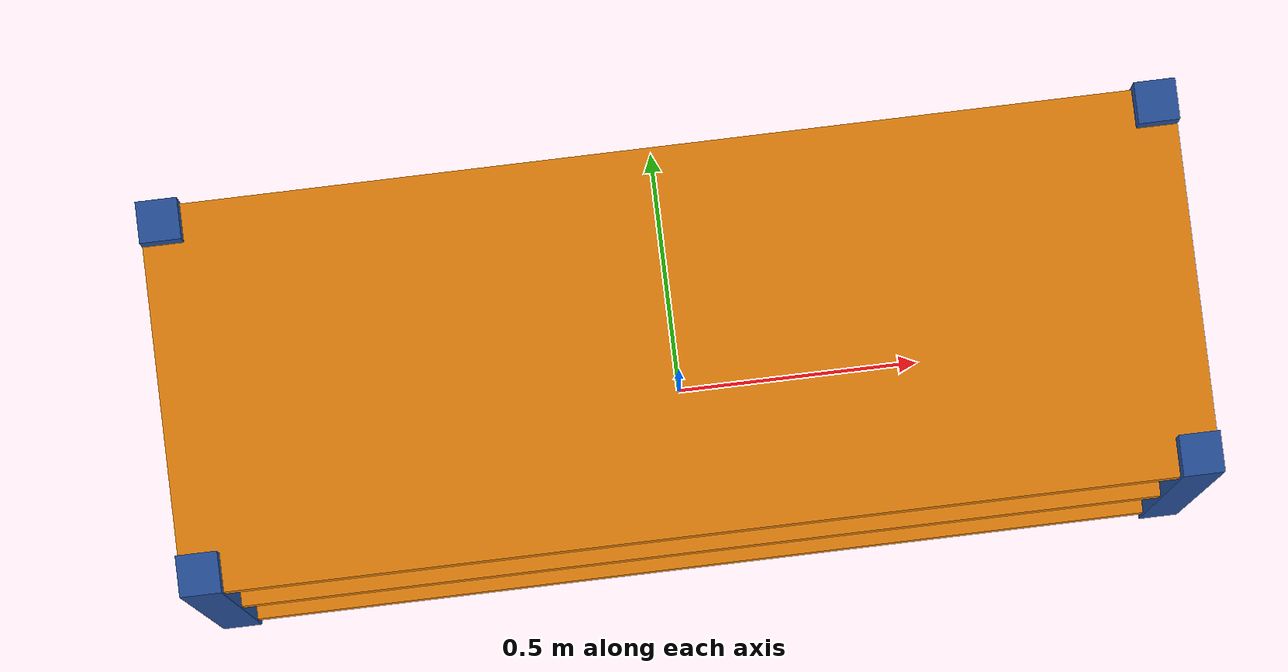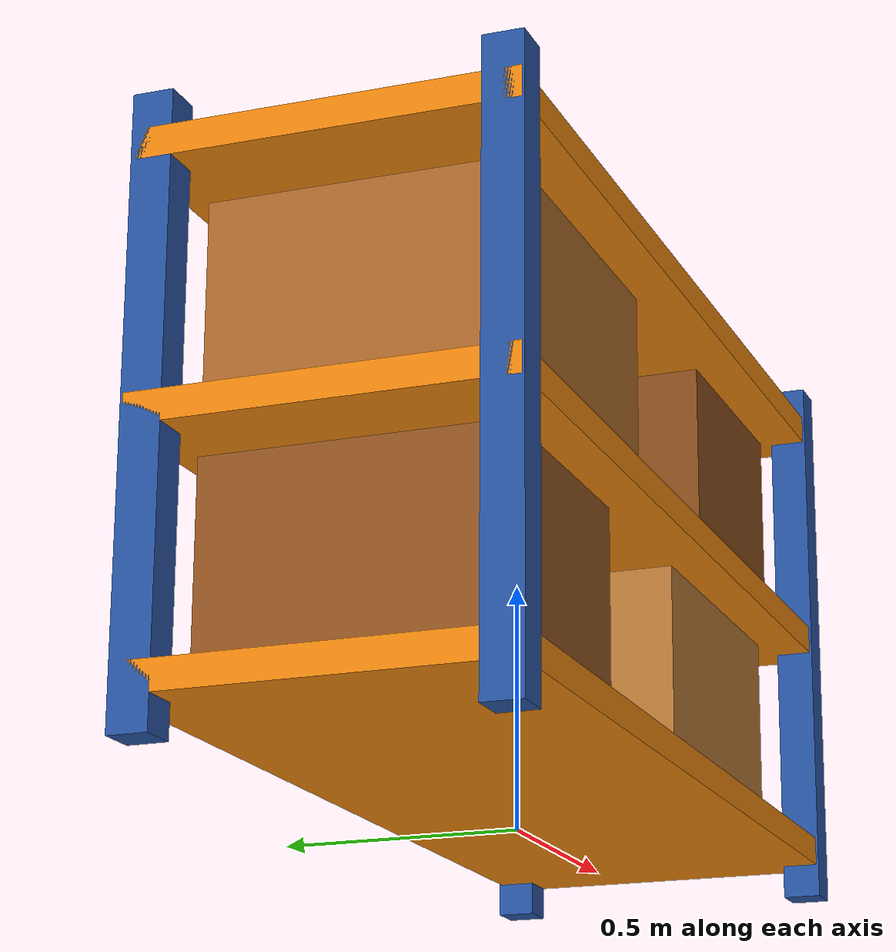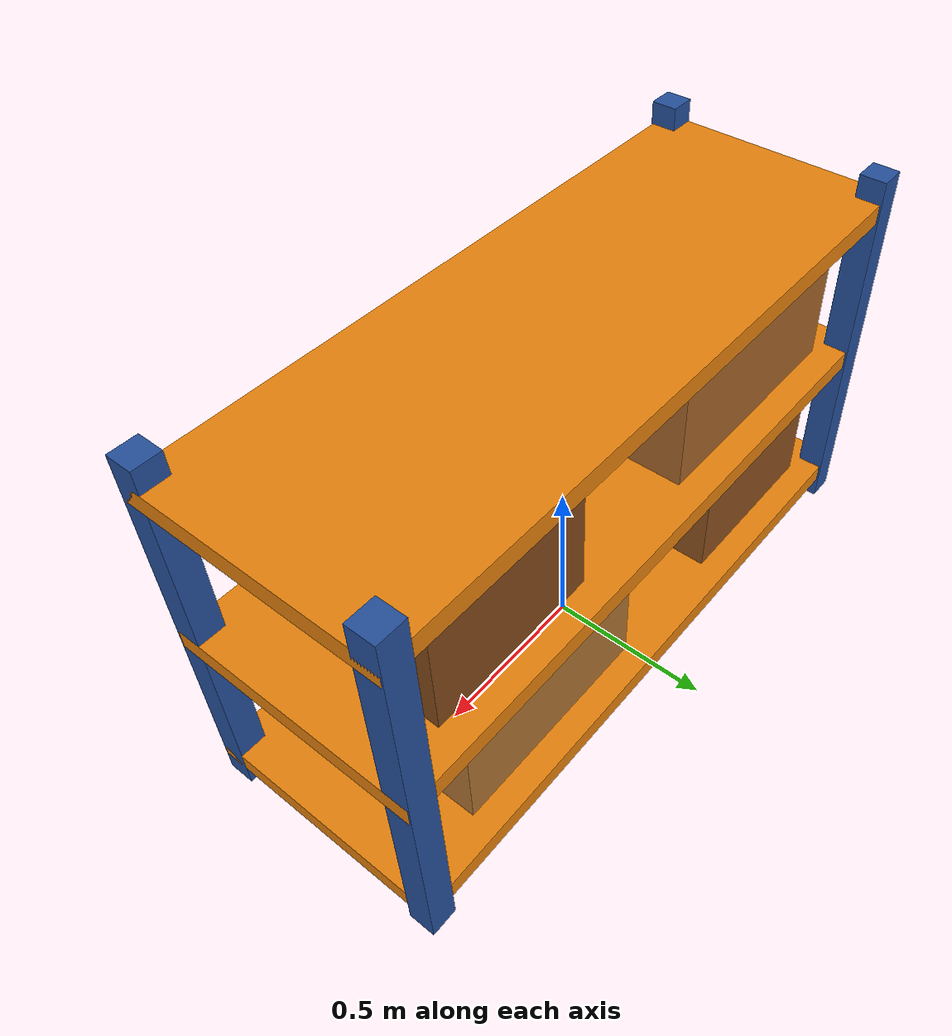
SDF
<?xml version="1.0"?>
<sdf version="1.8">
  <model name="warehouse_rack">
    <static>true</static>
    <link name="rack">
      <collision name="rack_envelope">
        <pose>0 0 0.6 0 0 0</pose>
        <geometry>
          <box>
            <size>2.0 0.75 1.2</size>
          </box>
        </geometry>
      </collision>

      <visual name="post_front_left">
        <pose>-0.96 -0.34 0.6 0 0 0</pose>
        <geometry><box><size>0.08 0.08 1.2</size></box></geometry>
        <material><diffuse>0.15 0.32 0.62 1</diffuse></material>
      </visual>
      <visual name="post_front_right">
        <pose>0.96 -0.34 0.6 0 0 0</pose>
        <geometry><box><size>0.08 0.08 1.2</size></box></geometry>
        <material><diffuse>0.15 0.32 0.62 1</diffuse></material>
      </visual>
      <visual name="post_rear_left">
        <pose>-0.96 0.34 0.6 0 0 0</pose>
        <geometry><box><size>0.08 0.08 1.2</size></box></geometry>
        <material><diffuse>0.15 0.32 0.62 1</diffuse></material>
      </visual>
      <visual name="post_rear_right">
        <pose>0.96 0.34 0.6 0 0 0</pose>
        <geometry><box><size>0.08 0.08 1.2</size></box></geometry>
        <material><diffuse>0.15 0.32 0.62 1</diffuse></material>
      </visual>

      <visual name="shelf_lower">
        <pose>0 0 0.10 0 0 0</pose>
        <geometry><box><size>2.0 0.75 0.06</size></box></geometry>
        <material><diffuse>0.92 0.52 0.05 1</diffuse></material>
      </visual>
      <visual name="shelf_middle">
        <pose>0 0 0.59 0 0 0</pose>
        <geometry><box><size>2.0 0.75 0.06</size></box></geometry>
        <material><diffuse>0.92 0.52 0.05 1</diffuse></material>
      </visual>
      <visual name="shelf_upper">
        <pose>0 0 1.10 0 0 0</pose>
        <geometry><box><size>2.0 0.75 0.06</size></box></geometry>
        <material><diffuse>0.92 0.52 0.05 1</diffuse></material>
      </visual>

      <visual name="carton_lower_left">
        <pose>-0.58 0 0.34 0 0 0</pose>
        <geometry><box><size>0.54 0.60 0.40</size></box></geometry>
        <material><diffuse>0.56 0.32 0.12 1</diffuse></material>
      </visual>
      <visual name="carton_lower_right">
        <pose>0.42 0 0.34 0 0 0</pose>
        <geometry><box><size>0.66 0.60 0.40</size></box></geometry>
        <material><diffuse>0.70 0.46 0.20 1</diffuse></material>
      </visual>
      <visual name="carton_upper_left">
        <pose>-0.48 0 0.84 0 0 0</pose>
        <geometry><box><size>0.72 0.60 0.40</size></box></geometry>
        <material><diffuse>0.66 0.40 0.16 1</diffuse></material>
      </visual>
      <visual name="carton_upper_right">
        <pose>0.56 0 0.84 0 0 0</pose>
        <geometry><box><size>0.52 0.60 0.40</size></box></geometry>
        <material><diffuse>0.52 0.29 0.10 1</diffuse></material>
      </visual>
    </link>
  </model>
</sdf>
